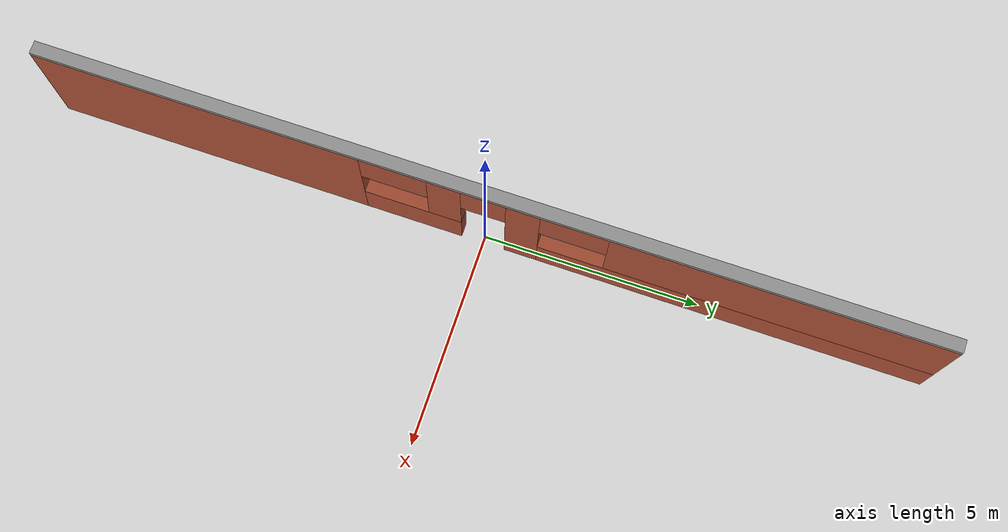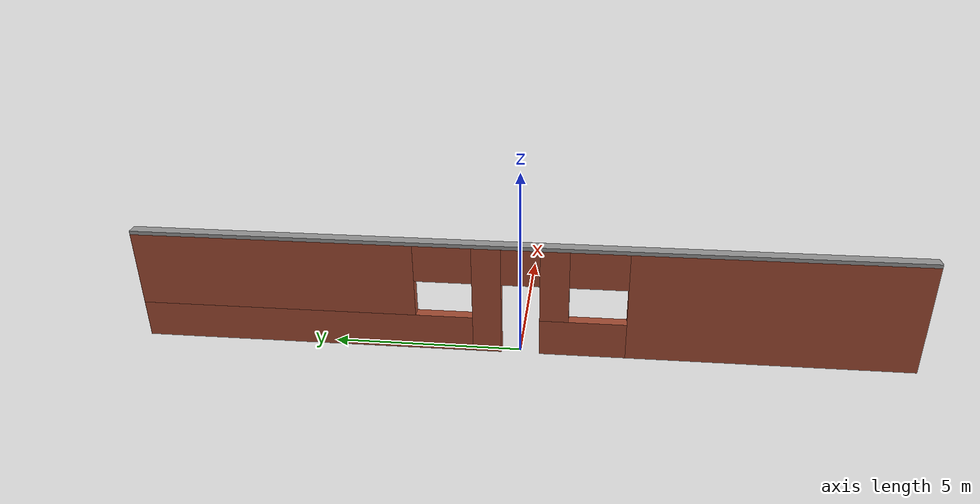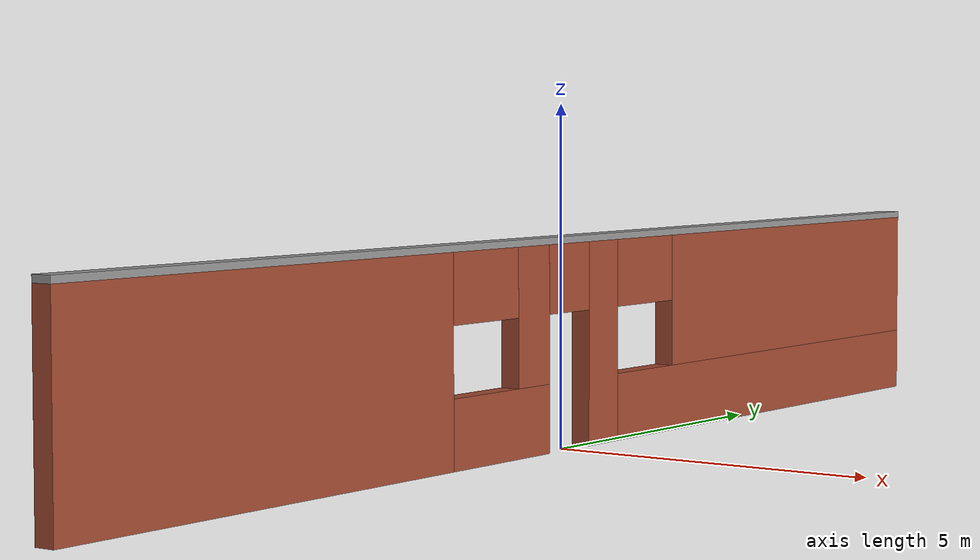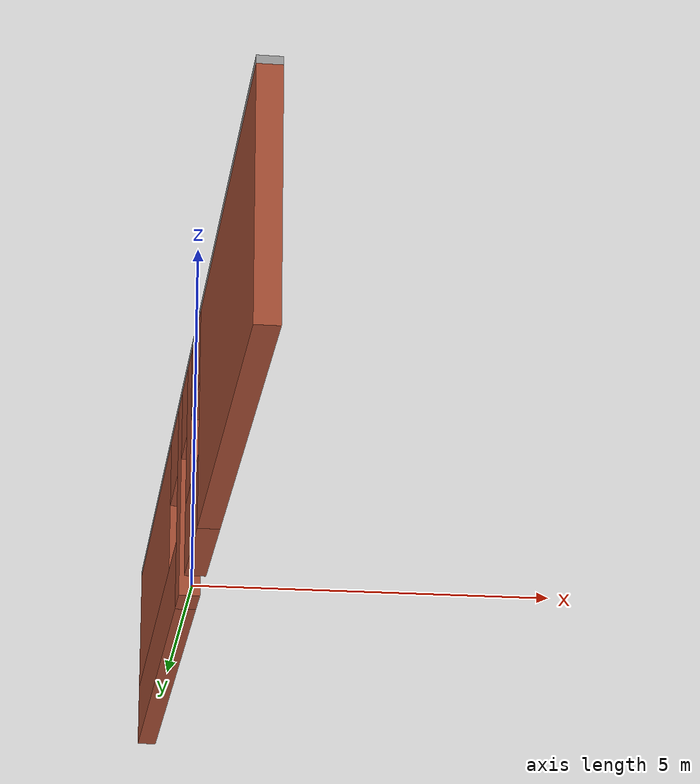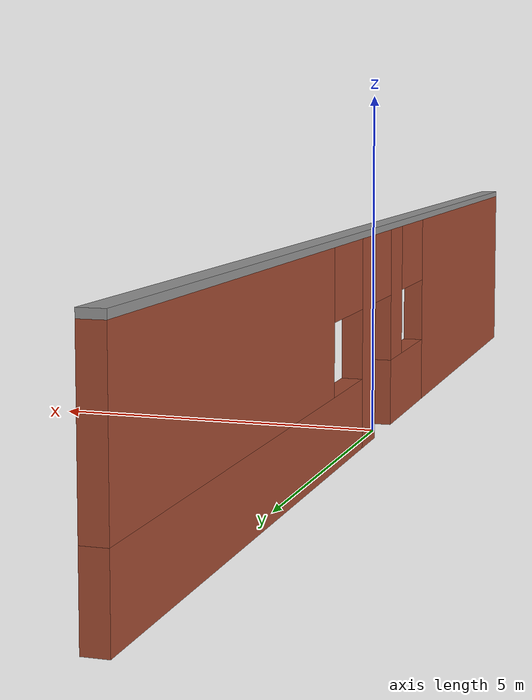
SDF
<?xml version='1.0'?>
<sdf version='1.7'>
  <model name='ground_wall'>
    <pose>0 0 0 0 -0 0</pose>
    <link name='Floor_5'>
      <collision name='Floor_5_Collision'>
        <geometry>
          <box>
            <size>0.3 20.3 0.1</size>
          </box>
        </geometry>
        <pose>0 0 0.05 0 -0 0</pose>
      </collision>
      <visual name='Floor_5_Visual'>
        <pose>0 0 0.05 0 -0 0</pose>
        <geometry>
          <box>
            <size>0.3 20.3 0.1</size>
          </box>
        </geometry>
        <material>
          <script>
            <uri>file://media/materials/scripts/gazebo.material</uri>
            <name>Gazebo/Grey</name>
          </script>
          <ambient>1 1 1 1</ambient>
        </material>
        <meta>
          <layer>1</layer>
        </meta>
      </visual>
      <pose>0 0 3 0 -0 0</pose>
    </link>
    <link name='Wall_7'>
      <pose>0 0 0 0 -0 1.5708</pose>
      <visual name='Wall_7_Visual_0'>
        <pose>-6.45 0 1.5 0 -0 0</pose>
        <geometry>
          <box>
            <size>7.4 0.3 3</size>
          </box>
        </geometry>
        <material>
          <script>
            <uri>file://media/materials/scripts/gazebo.material</uri>
            <name>Gazebo/Bricks</name>
          </script>
          <ambient>1 1 1 1</ambient>
        </material>
        <meta>
          <layer>0</layer>
        </meta>
      </visual>
      <collision name='Wall_7_Collision_0'>
        <geometry>
          <box>
            <size>7.4 0.3 3</size>
          </box>
        </geometry>
        <pose>-6.45 0 1.5 0 -0 0</pose>
      </collision>
      <visual name='Wall_7_Visual_1'>
        <pose>0.875 0 1.5 0 -0 0</pose>
        <geometry>
          <box>
            <size>0.75 0.3 3</size>
          </box>
        </geometry>
        <material>
          <script>
            <uri>file://media/materials/scripts/gazebo.material</uri>
            <name>Gazebo/Bricks</name>
          </script>
          <ambient>1 1 1 1</ambient>
        </material>
        <meta>
          <layer>0</layer>
        </meta>
      </visual>
      <collision name='Wall_7_Collision_1'>
        <geometry>
          <box>
            <size>0.75 0.3 3</size>
          </box>
        </geometry>
        <pose>0.875 0 1.5 0 -0 0</pose>
      </collision>
      <visual name='Wall_7_Visual_2'>
        <pose>-1.625 0 0.5 0 -0 0</pose>
        <geometry>
          <box>
            <size>2.25 0.3 1</size>
          </box>
        </geometry>
        <material>
          <script>
            <uri>file://media/materials/scripts/gazebo.material</uri>
            <name>Gazebo/Bricks</name>
          </script>
          <ambient>1 1 1 1</ambient>
        </material>
        <meta>
          <layer>0</layer>
        </meta>
      </visual>
      <collision name='Wall_7_Collision_2'>
        <geometry>
          <box>
            <size>2.25 0.3 1</size>
          </box>
        </geometry>
        <pose>-1.625 0 0.5 0 -0 0</pose>
      </collision>
      <visual name='Wall_7_Visual_3'>
        <pose>5.7 0 0.5 0 -0 0</pose>
        <geometry>
          <box>
            <size>8.9 0.3 1</size>
          </box>
        </geometry>
        <material>
          <script>
            <uri>file://media/materials/scripts/gazebo.material</uri>
            <name>Gazebo/Bricks</name>
          </script>
          <ambient>1 1 1 1</ambient>
        </material>
        <meta>
          <layer>0</layer>
        </meta>
      </visual>
      <collision name='Wall_7_Collision_3'>
        <geometry>
          <box>
            <size>8.9 0.3 1</size>
          </box>
        </geometry>
        <pose>5.7 0 0.5 0 -0 0</pose>
      </collision>
      <visual name='Wall_7_Visual_4'>
        <pose>-0.875 0 2 0 -0 0</pose>
        <geometry>
          <box>
            <size>0.75 0.3 2</size>
          </box>
        </geometry>
        <material>
          <script>
            <uri>file://media/materials/scripts/gazebo.material</uri>
            <name>Gazebo/Bricks</name>
          </script>
          <ambient>1 1 1 1</ambient>
        </material>
        <meta>
          <layer>0</layer>
        </meta>
      </visual>
      <collision name='Wall_7_Collision_4'>
        <geometry>
          <box>
            <size>0.75 0.3 2</size>
          </box>
        </geometry>
        <pose>-0.875 0 2 0 -0 0</pose>
      </collision>
      <visual name='Wall_7_Visual_5'>
        <pose>-0.875 0 2 0 -0 0</pose>
        <geometry>
          <box>
            <size>0.75 0.3 2</size>
          </box>
        </geometry>
        <material>
          <script>
            <uri>file://media/materials/scripts/gazebo.material</uri>
            <name>Gazebo/Bricks</name>
          </script>
          <ambient>1 1 1 1</ambient>
        </material>
        <meta>
          <layer>0</layer>
        </meta>
      </visual>
      <collision name='Wall_7_Collision_5'>
        <geometry>
          <box>
            <size>0.75 0.3 2</size>
          </box>
        </geometry>
        <pose>-0.875 0 2 0 -0 0</pose>
      </collision>
      <visual name='Wall_7_Visual_6'>
        <pose>6.45 0 2 0 -0 0</pose>
        <geometry>
          <box>
            <size>7.4 0.3 2</size>
          </box>
        </geometry>
        <material>
          <script>
            <uri>file://media/materials/scripts/gazebo.material</uri>
            <name>Gazebo/Bricks</name>
          </script>
          <ambient>1 1 1 1</ambient>
        </material>
        <meta>
          <layer>0</layer>
        </meta>
      </visual>
      <collision name='Wall_7_Collision_6'>
        <geometry>
          <box>
            <size>7.4 0.3 2</size>
          </box>
        </geometry>
        <pose>6.45 0 2 0 -0 0</pose>
      </collision>
      <visual name='Wall_7_Visual_7'>
        <pose>-2 0 2.5 0 -0 0</pose>
        <geometry>
          <box>
            <size>1.5 0.3 1</size>
          </box>
        </geometry>
        <material>
          <script>
            <uri>file://media/materials/scripts/gazebo.material</uri>
            <name>Gazebo/Bricks</name>
          </script>
          <ambient>1 1 1 1</ambient>
        </material>
        <meta>
          <layer>0</layer>
        </meta>
      </visual>
      <collision name='Wall_7_Collision_7'>
        <geometry>
          <box>
            <size>1.5 0.3 1</size>
          </box>
        </geometry>
        <pose>-2 0 2.5 0 -0 0</pose>
      </collision>
      <visual name='Wall_7_Visual_8'>
        <pose>2 0 2.5 0 -0 0</pose>
        <geometry>
          <box>
            <size>1.5 0.3 1</size>
          </box>
        </geometry>
        <material>
          <script>
            <uri>file://media/materials/scripts/gazebo.material</uri>
            <name>Gazebo/Bricks</name>
          </script>
          <ambient>1 1 1 1</ambient>
        </material>
        <meta>
          <layer>0</layer>
        </meta>
      </visual>
      <collision name='Wall_7_Collision_8'>
        <geometry>
          <box>
            <size>1.5 0.3 1</size>
          </box>
        </geometry>
        <pose>2 0 2.5 0 -0 0</pose>
      </collision>
      <visual name='Wall_7_Visual_9'>
        <pose>0 0 2.5 0 -0 0</pose>
        <geometry>
          <box>
            <size>1 0.3 1</size>
          </box>
        </geometry>
        <material>
          <script>
            <uri>file://media/materials/scripts/gazebo.material</uri>
            <name>Gazebo/Bricks</name>
          </script>
          <ambient>1 1 1 1</ambient>
        </material>
        <meta>
          <layer>0</layer>
        </meta>
      </visual>
      <collision name='Wall_7_Collision_9'>
        <geometry>
          <box>
            <size>1 0.3 1</size>
          </box>
        </geometry>
        <pose>0 0 2.5 0 -0 0</pose>
      </collision>
      <visual name='Wall_7_Visual_10'>
        <pose>0 0 2.5 0 -0 0</pose>
        <geometry>
          <box>
            <size>1 0.3 1</size>
          </box>
        </geometry>
        <material>
          <script>
            <uri>file://media/materials/scripts/gazebo.material</uri>
            <name>Gazebo/Bricks</name>
          </script>
          <ambient>1 1 1 1</ambient>
        </material>
        <meta>
          <layer>0</layer>
        </meta>
      </visual>
      <collision name='Wall_7_Collision_10'>
        <geometry>
          <box>
            <size>1 0.3 1</size>
          </box>
        </geometry>
        <pose>0 0 2.5 0 -0 0</pose>
      </collision>
    </link>
    <static>1</static>
  </model>
</sdf>
